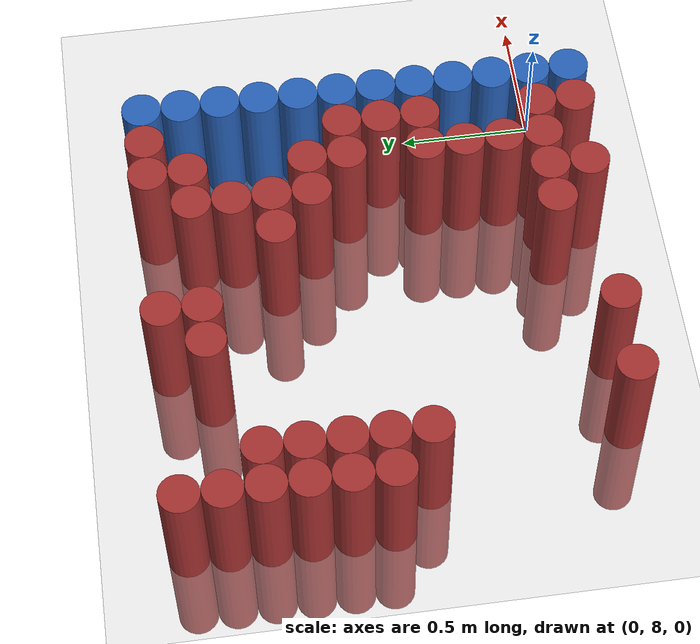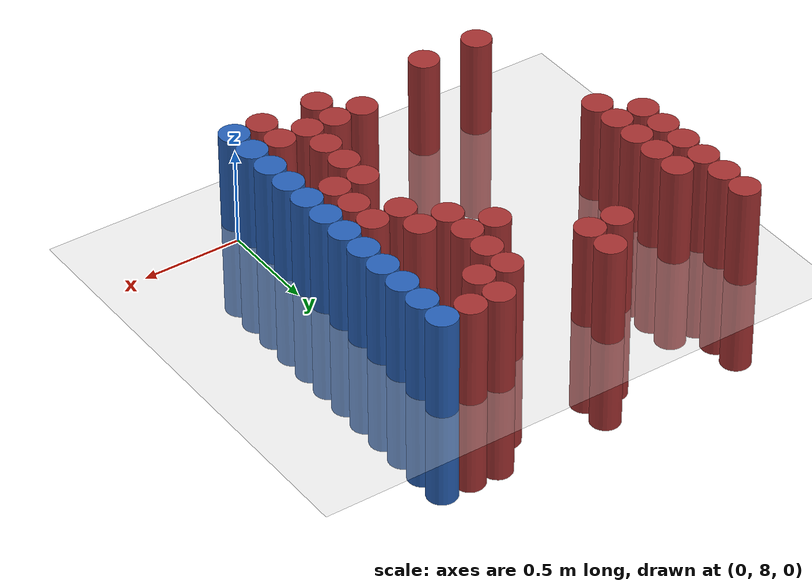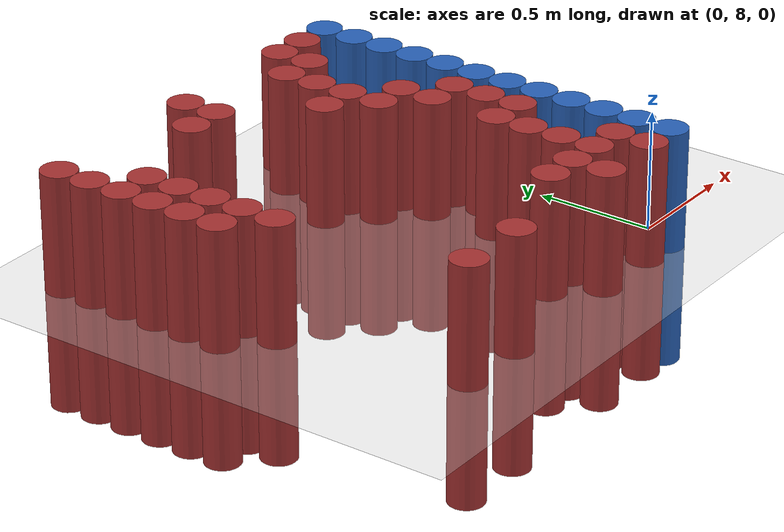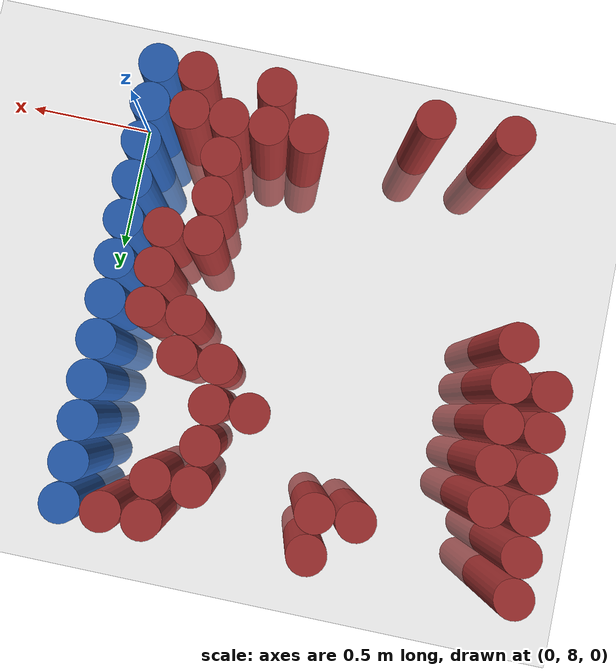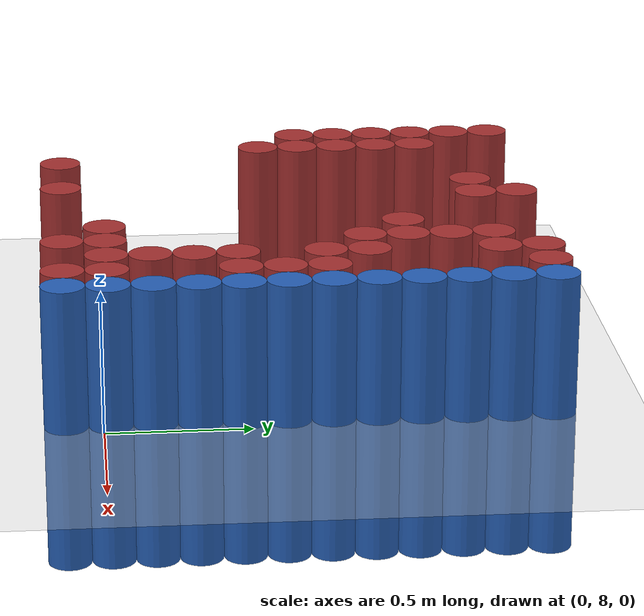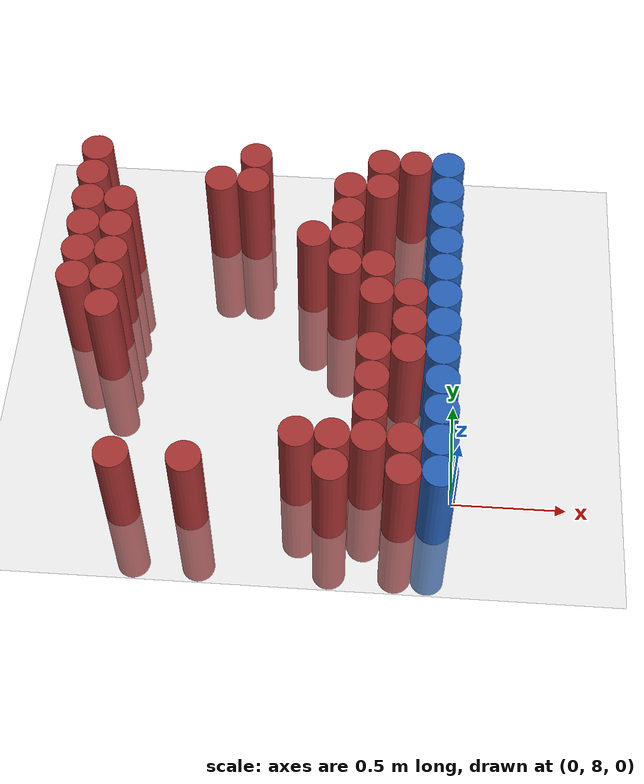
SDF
<sdf version="1.6">
 <world name="default">
  <model name="ground_plane">
   <static>1</static>
   <link name="link">
    <collision name="collision">
     <geometry><plane><normal>0 0 1</normal><size>100 100</size></plane></geometry>
     <surface><friction><ode><mu>100</mu><mu2>50</mu2></ode></friction></surface>
    </collision>
    <visual name="visual">
     <cast_shadows>0</cast_shadows>
     <geometry><plane><normal>0 0 1</normal><size>100 100</size></plane></geometry>
     <material>
      <script><uri>file://media/materials/scripts/gazebo.material</uri><name>Gazebo/Grey</name></script>
     </material>
    </visual>
   </link>
  </model>
  <model name="unit_cylinder_233">
   <static>1</static>
   <pose>-1.725000 8.775000 0.000000 0.000000 0.000000 0.000000</pose>
   <link name="link">
    <inertial>
     <mass>1</mass>
     <inertia><ixx>0.145833</ixx><ixy>0</ixy><ixz>0</ixz><iyy>0.145833</iyy><iyz>0</iyz><izz>0.125</izz></inertia>
    </inertial>
    <collision name="collision">
     <geometry><cylinder><radius>0.075000</radius><length>1</length></cylinder></geometry>
    </collision>
    <visual name="visual">
     <geometry><cylinder><radius>0.075000</radius><length>1</length></cylinder></geometry>
     <material>
      <ambient>0.648000 0.192000 0.192000 1</ambient>
      <diffuse>0.648000 0.192000 0.192000 1</diffuse>
     </material>
     <material>
      <script><name>Gazebo/Grey</name><uri>file://media/materials/scripts/gazebo.material</uri></script>
     </material>
    </visual>
   </link>
  </model>
  <model name="unit_cylinder_234">
   <static>1</static>
   <pose>-1.725000 8.925000 0.000000 0.000000 0.000000 0.000000</pose>
   <link name="link">
    <inertial>
     <mass>1</mass>
     <inertia><ixx>0.145833</ixx><ixy>0</ixy><ixz>0</ixz><iyy>0.145833</iyy><iyz>0</iyz><izz>0.125</izz></inertia>
    </inertial>
    <collision name="collision">
     <geometry><cylinder><radius>0.075000</radius><length>1</length></cylinder></geometry>
    </collision>
    <visual name="visual">
     <geometry><cylinder><radius>0.075000</radius><length>1</length></cylinder></geometry>
     <material>
      <ambient>0.648000 0.192000 0.192000 1</ambient>
      <diffuse>0.648000 0.192000 0.192000 1</diffuse>
     </material>
     <material>
      <script><name>Gazebo/Grey</name><uri>file://media/materials/scripts/gazebo.material</uri></script>
     </material>
    </visual>
   </link>
  </model>
  <model name="unit_cylinder_235">
   <static>1</static>
   <pose>-1.725000 9.075000 0.000000 0.000000 0.000000 0.000000</pose>
   <link name="link">
    <inertial>
     <mass>1</mass>
     <inertia><ixx>0.145833</ixx><ixy>0</ixy><ixz>0</ixz><iyy>0.145833</iyy><iyz>0</iyz><izz>0.125</izz></inertia>
    </inertial>
    <collision name="collision">
     <geometry><cylinder><radius>0.075000</radius><length>1</length></cylinder></geometry>
    </collision>
    <visual name="visual">
     <geometry><cylinder><radius>0.075000</radius><length>1</length></cylinder></geometry>
     <material>
      <ambient>0.648000 0.192000 0.192000 1</ambient>
      <diffuse>0.648000 0.192000 0.192000 1</diffuse>
     </material>
     <material>
      <script><name>Gazebo/Grey</name><uri>file://media/materials/scripts/gazebo.material</uri></script>
     </material>
    </visual>
   </link>
  </model>
  <model name="unit_cylinder_236">
   <static>1</static>
   <pose>-1.725000 9.225000 0.000000 0.000000 0.000000 0.000000</pose>
   <link name="link">
    <inertial>
     <mass>1</mass>
     <inertia><ixx>0.145833</ixx><ixy>0</ixy><ixz>0</ixz><iyy>0.145833</iyy><iyz>0</iyz><izz>0.125</izz></inertia>
    </inertial>
    <collision name="collision">
     <geometry><cylinder><radius>0.075000</radius><length>1</length></cylinder></geometry>
    </collision>
    <visual name="visual">
     <geometry><cylinder><radius>0.075000</radius><length>1</length></cylinder></geometry>
     <material>
      <ambient>0.648000 0.192000 0.192000 1</ambient>
      <diffuse>0.648000 0.192000 0.192000 1</diffuse>
     </material>
     <material>
      <script><name>Gazebo/Grey</name><uri>file://media/materials/scripts/gazebo.material</uri></script>
     </material>
    </visual>
   </link>
  </model>
  <model name="unit_cylinder_237">
   <static>1</static>
   <pose>-1.725000 9.375000 0.000000 0.000000 0.000000 0.000000</pose>
   <link name="link">
    <inertial>
     <mass>1</mass>
     <inertia><ixx>0.145833</ixx><ixy>0</ixy><ixz>0</ixz><iyy>0.145833</iyy><iyz>0</iyz><izz>0.125</izz></inertia>
    </inertial>
    <collision name="collision">
     <geometry><cylinder><radius>0.075000</radius><length>1</length></cylinder></geometry>
    </collision>
    <visual name="visual">
     <geometry><cylinder><radius>0.075000</radius><length>1</length></cylinder></geometry>
     <material>
      <ambient>0.648000 0.192000 0.192000 1</ambient>
      <diffuse>0.648000 0.192000 0.192000 1</diffuse>
     </material>
     <material>
      <script><name>Gazebo/Grey</name><uri>file://media/materials/scripts/gazebo.material</uri></script>
     </material>
    </visual>
   </link>
  </model>
  <model name="unit_cylinder_238">
   <static>1</static>
   <pose>-1.725000 9.525000 0.000000 0.000000 0.000000 0.000000</pose>
   <link name="link">
    <inertial>
     <mass>1</mass>
     <inertia><ixx>0.145833</ixx><ixy>0</ixy><ixz>0</ixz><iyy>0.145833</iyy><iyz>0</iyz><izz>0.125</izz></inertia>
    </inertial>
    <collision name="collision">
     <geometry><cylinder><radius>0.075000</radius><length>1</length></cylinder></geometry>
    </collision>
    <visual name="visual">
     <geometry><cylinder><radius>0.075000</radius><length>1</length></cylinder></geometry>
     <material>
      <ambient>0.648000 0.192000 0.192000 1</ambient>
      <diffuse>0.648000 0.192000 0.192000 1</diffuse>
     </material>
     <material>
      <script><name>Gazebo/Grey</name><uri>file://media/materials/scripts/gazebo.material</uri></script>
     </material>
    </visual>
   </link>
  </model>
  <model name="unit_cylinder_242">
   <static>1</static>
   <pose>-1.575000 8.625000 0.000000 0.000000 0.000000 0.000000</pose>
   <link name="link">
    <inertial>
     <mass>1</mass>
     <inertia><ixx>0.145833</ixx><ixy>0</ixy><ixz>0</ixz><iyy>0.145833</iyy><iyz>0</iyz><izz>0.125</izz></inertia>
    </inertial>
    <collision name="collision">
     <geometry><cylinder><radius>0.075000</radius><length>1</length></cylinder></geometry>
    </collision>
    <visual name="visual">
     <geometry><cylinder><radius>0.075000</radius><length>1</length></cylinder></geometry>
     <material>
      <ambient>0.648000 0.192000 0.192000 1</ambient>
      <diffuse>0.648000 0.192000 0.192000 1</diffuse>
     </material>
     <material>
      <script><name>Gazebo/Grey</name><uri>file://media/materials/scripts/gazebo.material</uri></script>
     </material>
    </visual>
   </link>
  </model>
  <model name="unit_cylinder_243">
   <static>1</static>
   <pose>-1.575000 8.775000 0.000000 0.000000 0.000000 0.000000</pose>
   <link name="link">
    <inertial>
     <mass>1</mass>
     <inertia><ixx>0.145833</ixx><ixy>0</ixy><ixz>0</ixz><iyy>0.145833</iyy><iyz>0</iyz><izz>0.125</izz></inertia>
    </inertial>
    <collision name="collision">
     <geometry><cylinder><radius>0.075000</radius><length>1</length></cylinder></geometry>
    </collision>
    <visual name="visual">
     <geometry><cylinder><radius>0.075000</radius><length>1</length></cylinder></geometry>
     <material>
      <ambient>0.648000 0.192000 0.192000 1</ambient>
      <diffuse>0.648000 0.192000 0.192000 1</diffuse>
     </material>
     <material>
      <script><name>Gazebo/Grey</name><uri>file://media/materials/scripts/gazebo.material</uri></script>
     </material>
    </visual>
   </link>
  </model>
  <model name="unit_cylinder_244">
   <static>1</static>
   <pose>-1.575000 8.925000 0.000000 0.000000 0.000000 0.000000</pose>
   <link name="link">
    <inertial>
     <mass>1</mass>
     <inertia><ixx>0.145833</ixx><ixy>0</ixy><ixz>0</ixz><iyy>0.145833</iyy><iyz>0</iyz><izz>0.125</izz></inertia>
    </inertial>
    <collision name="collision">
     <geometry><cylinder><radius>0.075000</radius><length>1</length></cylinder></geometry>
    </collision>
    <visual name="visual">
     <geometry><cylinder><radius>0.075000</radius><length>1</length></cylinder></geometry>
     <material>
      <ambient>0.648000 0.192000 0.192000 1</ambient>
      <diffuse>0.648000 0.192000 0.192000 1</diffuse>
     </material>
     <material>
      <script><name>Gazebo/Grey</name><uri>file://media/materials/scripts/gazebo.material</uri></script>
     </material>
    </visual>
   </link>
  </model>
  <model name="unit_cylinder_245">
   <static>1</static>
   <pose>-1.575000 9.075000 0.000000 0.000000 0.000000 0.000000</pose>
   <link name="link">
    <inertial>
     <mass>1</mass>
     <inertia><ixx>0.145833</ixx><ixy>0</ixy><ixz>0</ixz><iyy>0.145833</iyy><iyz>0</iyz><izz>0.125</izz></inertia>
    </inertial>
    <collision name="collision">
     <geometry><cylinder><radius>0.075000</radius><length>1</length></cylinder></geometry>
    </collision>
    <visual name="visual">
     <geometry><cylinder><radius>0.075000</radius><length>1</length></cylinder></geometry>
     <material>
      <ambient>0.648000 0.192000 0.192000 1</ambient>
      <diffuse>0.648000 0.192000 0.192000 1</diffuse>
     </material>
     <material>
      <script><name>Gazebo/Grey</name><uri>file://media/materials/scripts/gazebo.material</uri></script>
     </material>
    </visual>
   </link>
  </model>
  <model name="unit_cylinder_246">
   <static>1</static>
   <pose>-1.575000 9.225000 0.000000 0.000000 0.000000 0.000000</pose>
   <link name="link">
    <inertial>
     <mass>1</mass>
     <inertia><ixx>0.145833</ixx><ixy>0</ixy><ixz>0</ixz><iyy>0.145833</iyy><iyz>0</iyz><izz>0.125</izz></inertia>
    </inertial>
    <collision name="collision">
     <geometry><cylinder><radius>0.075000</radius><length>1</length></cylinder></geometry>
    </collision>
    <visual name="visual">
     <geometry><cylinder><radius>0.075000</radius><length>1</length></cylinder></geometry>
     <material>
      <ambient>0.648000 0.192000 0.192000 1</ambient>
      <diffuse>0.648000 0.192000 0.192000 1</diffuse>
     </material>
     <material>
      <script><name>Gazebo/Grey</name><uri>file://media/materials/scripts/gazebo.material</uri></script>
     </material>
    </visual>
   </link>
  </model>
  <model name="unit_cylinder_249">
   <static>1</static>
   <pose>-1.425000 7.875000 0.000000 0.000000 0.000000 0.000000</pose>
   <link name="link">
    <inertial>
     <mass>1</mass>
     <inertia><ixx>0.145833</ixx><ixy>0</ixy><ixz>0</ixz><iyy>0.145833</iyy><iyz>0</iyz><izz>0.125</izz></inertia>
    </inertial>
    <collision name="collision">
     <geometry><cylinder><radius>0.075000</radius><length>1</length></cylinder></geometry>
    </collision>
    <visual name="visual">
     <geometry><cylinder><radius>0.075000</radius><length>1</length></cylinder></geometry>
     <material>
      <ambient>0.648000 0.192000 0.192000 1</ambient>
      <diffuse>0.648000 0.192000 0.192000 1</diffuse>
     </material>
     <material>
      <script><name>Gazebo/Grey</name><uri>file://media/materials/scripts/gazebo.material</uri></script>
     </material>
    </visual>
   </link>
  </model>
  <model name="unit_cylinder_254">
   <static>1</static>
   <pose>-1.125000 7.875000 0.000000 0.000000 0.000000 0.000000</pose>
   <link name="link">
    <inertial>
     <mass>1</mass>
     <inertia><ixx>0.145833</ixx><ixy>0</ixy><ixz>0</ixz><iyy>0.145833</iyy><iyz>0</iyz><izz>0.125</izz></inertia>
    </inertial>
    <collision name="collision">
     <geometry><cylinder><radius>0.075000</radius><length>1</length></cylinder></geometry>
    </collision>
    <visual name="visual">
     <geometry><cylinder><radius>0.075000</radius><length>1</length></cylinder></geometry>
     <material>
      <ambient>0.648000 0.192000 0.192000 1</ambient>
      <diffuse>0.648000 0.192000 0.192000 1</diffuse>
     </material>
     <material>
      <script><name>Gazebo/Grey</name><uri>file://media/materials/scripts/gazebo.material</uri></script>
     </material>
    </visual>
   </link>
  </model>
  <model name="unit_cylinder_255">
   <static>1</static>
   <pose>-1.125000 9.375000 0.000000 0.000000 0.000000 0.000000</pose>
   <link name="link">
    <inertial>
     <mass>1</mass>
     <inertia><ixx>0.145833</ixx><ixy>0</ixy><ixz>0</ixz><iyy>0.145833</iyy><iyz>0</iyz><izz>0.125</izz></inertia>
    </inertial>
    <collision name="collision">
     <geometry><cylinder><radius>0.075000</radius><length>1</length></cylinder></geometry>
    </collision>
    <visual name="visual">
     <geometry><cylinder><radius>0.075000</radius><length>1</length></cylinder></geometry>
     <material>
      <ambient>0.648000 0.192000 0.192000 1</ambient>
      <diffuse>0.648000 0.192000 0.192000 1</diffuse>
     </material>
     <material>
      <script><name>Gazebo/Grey</name><uri>file://media/materials/scripts/gazebo.material</uri></script>
     </material>
    </visual>
   </link>
  </model>
  <model name="unit_cylinder_262">
   <static>1</static>
   <pose>-0.975000 9.375000 0.000000 0.000000 0.000000 0.000000</pose>
   <link name="link">
    <inertial>
     <mass>1</mass>
     <inertia><ixx>0.145833</ixx><ixy>0</ixy><ixz>0</ixz><iyy>0.145833</iyy><iyz>0</iyz><izz>0.125</izz></inertia>
    </inertial>
    <collision name="collision">
     <geometry><cylinder><radius>0.075000</radius><length>1</length></cylinder></geometry>
    </collision>
    <visual name="visual">
     <geometry><cylinder><radius>0.075000</radius><length>1</length></cylinder></geometry>
     <material>
      <ambient>0.648000 0.192000 0.192000 1</ambient>
      <diffuse>0.648000 0.192000 0.192000 1</diffuse>
     </material>
     <material>
      <script><name>Gazebo/Grey</name><uri>file://media/materials/scripts/gazebo.material</uri></script>
     </material>
    </visual>
   </link>
  </model>
  <model name="unit_cylinder_263">
   <static>1</static>
   <pose>-0.975000 9.525000 0.000000 0.000000 0.000000 0.000000</pose>
   <link name="link">
    <inertial>
     <mass>1</mass>
     <inertia><ixx>0.145833</ixx><ixy>0</ixy><ixz>0</ixz><iyy>0.145833</iyy><iyz>0</iyz><izz>0.125</izz></inertia>
    </inertial>
    <collision name="collision">
     <geometry><cylinder><radius>0.075000</radius><length>1</length></cylinder></geometry>
    </collision>
    <visual name="visual">
     <geometry><cylinder><radius>0.075000</radius><length>1</length></cylinder></geometry>
     <material>
      <ambient>0.648000 0.192000 0.192000 1</ambient>
      <diffuse>0.648000 0.192000 0.192000 1</diffuse>
     </material>
     <material>
      <script><name>Gazebo/Grey</name><uri>file://media/materials/scripts/gazebo.material</uri></script>
     </material>
    </visual>
   </link>
  </model>
  <model name="unit_cylinder_275">
   <static>1</static>
   <pose>-0.675000 8.025000 0.000000 0.000000 0.000000 0.000000</pose>
   <link name="link">
    <inertial>
     <mass>1</mass>
     <inertia><ixx>0.145833</ixx><ixy>0</ixy><ixz>0</ixz><iyy>0.145833</iyy><iyz>0</iyz><izz>0.125</izz></inertia>
    </inertial>
    <collision name="collision">
     <geometry><cylinder><radius>0.075000</radius><length>1</length></cylinder></geometry>
    </collision>
    <visual name="visual">
     <geometry><cylinder><radius>0.075000</radius><length>1</length></cylinder></geometry>
     <material>
      <ambient>0.648000 0.192000 0.192000 1</ambient>
      <diffuse>0.648000 0.192000 0.192000 1</diffuse>
     </material>
     <material>
      <script><name>Gazebo/Grey</name><uri>file://media/materials/scripts/gazebo.material</uri></script>
     </material>
    </visual>
   </link>
  </model>
  <model name="unit_cylinder_276">
   <static>1</static>
   <pose>-0.675000 9.075000 0.000000 0.000000 0.000000 0.000000</pose>
   <link name="link">
    <inertial>
     <mass>1</mass>
     <inertia><ixx>0.145833</ixx><ixy>0</ixy><ixz>0</ixz><iyy>0.145833</iyy><iyz>0</iyz><izz>0.125</izz></inertia>
    </inertial>
    <collision name="collision">
     <geometry><cylinder><radius>0.075000</radius><length>1</length></cylinder></geometry>
    </collision>
    <visual name="visual">
     <geometry><cylinder><radius>0.075000</radius><length>1</length></cylinder></geometry>
     <material>
      <ambient>0.648000 0.192000 0.192000 1</ambient>
      <diffuse>0.648000 0.192000 0.192000 1</diffuse>
     </material>
     <material>
      <script><name>Gazebo/Grey</name><uri>file://media/materials/scripts/gazebo.material</uri></script>
     </material>
    </visual>
   </link>
  </model>
  <model name="unit_cylinder_282">
   <static>1</static>
   <pose>-0.525000 7.875000 0.000000 0.000000 0.000000 0.000000</pose>
   <link name="link">
    <inertial>
     <mass>1</mass>
     <inertia><ixx>0.145833</ixx><ixy>0</ixy><ixz>0</ixz><iyy>0.145833</iyy><iyz>0</iyz><izz>0.125</izz></inertia>
    </inertial>
    <collision name="collision">
     <geometry><cylinder><radius>0.075000</radius><length>1</length></cylinder></geometry>
    </collision>
    <visual name="visual">
     <geometry><cylinder><radius>0.075000</radius><length>1</length></cylinder></geometry>
     <material>
      <ambient>0.648000 0.192000 0.192000 1</ambient>
      <diffuse>0.648000 0.192000 0.192000 1</diffuse>
     </material>
     <material>
      <script><name>Gazebo/Grey</name><uri>file://media/materials/scripts/gazebo.material</uri></script>
     </material>
    </visual>
   </link>
  </model>
  <model name="unit_cylinder_283">
   <static>1</static>
   <pose>-0.525000 8.025000 0.000000 0.000000 0.000000 0.000000</pose>
   <link name="link">
    <inertial>
     <mass>1</mass>
     <inertia><ixx>0.145833</ixx><ixy>0</ixy><ixz>0</ixz><iyy>0.145833</iyy><iyz>0</iyz><izz>0.125</izz></inertia>
    </inertial>
    <collision name="collision">
     <geometry><cylinder><radius>0.075000</radius><length>1</length></cylinder></geometry>
    </collision>
    <visual name="visual">
     <geometry><cylinder><radius>0.075000</radius><length>1</length></cylinder></geometry>
     <material>
      <ambient>0.648000 0.192000 0.192000 1</ambient>
      <diffuse>0.648000 0.192000 0.192000 1</diffuse>
     </material>
     <material>
      <script><name>Gazebo/Grey</name><uri>file://media/materials/scripts/gazebo.material</uri></script>
     </material>
    </visual>
   </link>
  </model>
  <model name="unit_cylinder_284">
   <static>1</static>
   <pose>-0.525000 8.925000 0.000000 0.000000 0.000000 0.000000</pose>
   <link name="link">
    <inertial>
     <mass>1</mass>
     <inertia><ixx>0.145833</ixx><ixy>0</ixy><ixz>0</ixz><iyy>0.145833</iyy><iyz>0</iyz><izz>0.125</izz></inertia>
    </inertial>
    <collision name="collision">
     <geometry><cylinder><radius>0.075000</radius><length>1</length></cylinder></geometry>
    </collision>
    <visual name="visual">
     <geometry><cylinder><radius>0.075000</radius><length>1</length></cylinder></geometry>
     <material>
      <ambient>0.648000 0.192000 0.192000 1</ambient>
      <diffuse>0.648000 0.192000 0.192000 1</diffuse>
     </material>
     <material>
      <script><name>Gazebo/Grey</name><uri>file://media/materials/scripts/gazebo.material</uri></script>
     </material>
    </visual>
   </link>
  </model>
  <model name="unit_cylinder_285">
   <static>1</static>
   <pose>-0.525000 9.075000 0.000000 0.000000 0.000000 0.000000</pose>
   <link name="link">
    <inertial>
     <mass>1</mass>
     <inertia><ixx>0.145833</ixx><ixy>0</ixy><ixz>0</ixz><iyy>0.145833</iyy><iyz>0</iyz><izz>0.125</izz></inertia>
    </inertial>
    <collision name="collision">
     <geometry><cylinder><radius>0.075000</radius><length>1</length></cylinder></geometry>
    </collision>
    <visual name="visual">
     <geometry><cylinder><radius>0.075000</radius><length>1</length></cylinder></geometry>
     <material>
      <ambient>0.648000 0.192000 0.192000 1</ambient>
      <diffuse>0.648000 0.192000 0.192000 1</diffuse>
     </material>
     <material>
      <script><name>Gazebo/Grey</name><uri>file://media/materials/scripts/gazebo.material</uri></script>
     </material>
    </visual>
   </link>
  </model>
  <model name="unit_cylinder_286">
   <static>1</static>
   <pose>-0.525000 9.225000 0.000000 0.000000 0.000000 0.000000</pose>
   <link name="link">
    <inertial>
     <mass>1</mass>
     <inertia><ixx>0.145833</ixx><ixy>0</ixy><ixz>0</ixz><iyy>0.145833</iyy><iyz>0</iyz><izz>0.125</izz></inertia>
    </inertial>
    <collision name="collision">
     <geometry><cylinder><radius>0.075000</radius><length>1</length></cylinder></geometry>
    </collision>
    <visual name="visual">
     <geometry><cylinder><radius>0.075000</radius><length>1</length></cylinder></geometry>
     <material>
      <ambient>0.648000 0.192000 0.192000 1</ambient>
      <diffuse>0.648000 0.192000 0.192000 1</diffuse>
     </material>
     <material>
      <script><name>Gazebo/Grey</name><uri>file://media/materials/scripts/gazebo.material</uri></script>
     </material>
    </visual>
   </link>
  </model>
  <model name="unit_cylinder_287">
   <static>1</static>
   <pose>-0.525000 9.375000 0.000000 0.000000 0.000000 0.000000</pose>
   <link name="link">
    <inertial>
     <mass>1</mass>
     <inertia><ixx>0.145833</ixx><ixy>0</ixy><ixz>0</ixz><iyy>0.145833</iyy><iyz>0</iyz><izz>0.125</izz></inertia>
    </inertial>
    <collision name="collision">
     <geometry><cylinder><radius>0.075000</radius><length>1</length></cylinder></geometry>
    </collision>
    <visual name="visual">
     <geometry><cylinder><radius>0.075000</radius><length>1</length></cylinder></geometry>
     <material>
      <ambient>0.648000 0.192000 0.192000 1</ambient>
      <diffuse>0.648000 0.192000 0.192000 1</diffuse>
     </material>
     <material>
      <script><name>Gazebo/Grey</name><uri>file://media/materials/scripts/gazebo.material</uri></script>
     </material>
    </visual>
   </link>
  </model>
  <model name="unit_cylinder_294">
   <static>1</static>
   <pose>-0.375000 8.025000 0.000000 0.000000 0.000000 0.000000</pose>
   <link name="link">
    <inertial>
     <mass>1</mass>
     <inertia><ixx>0.145833</ixx><ixy>0</ixy><ixz>0</ixz><iyy>0.145833</iyy><iyz>0</iyz><izz>0.125</izz></inertia>
    </inertial>
    <collision name="collision">
     <geometry><cylinder><radius>0.075000</radius><length>1</length></cylinder></geometry>
    </collision>
    <visual name="visual">
     <geometry><cylinder><radius>0.075000</radius><length>1</length></cylinder></geometry>
     <material>
      <ambient>0.648000 0.192000 0.192000 1</ambient>
      <diffuse>0.648000 0.192000 0.192000 1</diffuse>
     </material>
     <material>
      <script><name>Gazebo/Grey</name><uri>file://media/materials/scripts/gazebo.material</uri></script>
     </material>
    </visual>
   </link>
  </model>
  <model name="unit_cylinder_295">
   <static>1</static>
   <pose>-0.375000 8.175000 0.000000 0.000000 0.000000 0.000000</pose>
   <link name="link">
    <inertial>
     <mass>1</mass>
     <inertia><ixx>0.145833</ixx><ixy>0</ixy><ixz>0</ixz><iyy>0.145833</iyy><iyz>0</iyz><izz>0.125</izz></inertia>
    </inertial>
    <collision name="collision">
     <geometry><cylinder><radius>0.075000</radius><length>1</length></cylinder></geometry>
    </collision>
    <visual name="visual">
     <geometry><cylinder><radius>0.075000</radius><length>1</length></cylinder></geometry>
     <material>
      <ambient>0.648000 0.192000 0.192000 1</ambient>
      <diffuse>0.648000 0.192000 0.192000 1</diffuse>
     </material>
     <material>
      <script><name>Gazebo/Grey</name><uri>file://media/materials/scripts/gazebo.material</uri></script>
     </material>
    </visual>
   </link>
  </model>
  <model name="unit_cylinder_296">
   <static>1</static>
   <pose>-0.375000 8.325000 0.000000 0.000000 0.000000 0.000000</pose>
   <link name="link">
    <inertial>
     <mass>1</mass>
     <inertia><ixx>0.145833</ixx><ixy>0</ixy><ixz>0</ixz><iyy>0.145833</iyy><iyz>0</iyz><izz>0.125</izz></inertia>
    </inertial>
    <collision name="collision">
     <geometry><cylinder><radius>0.075000</radius><length>1</length></cylinder></geometry>
    </collision>
    <visual name="visual">
     <geometry><cylinder><radius>0.075000</radius><length>1</length></cylinder></geometry>
     <material>
      <ambient>0.648000 0.192000 0.192000 1</ambient>
      <diffuse>0.648000 0.192000 0.192000 1</diffuse>
     </material>
     <material>
      <script><name>Gazebo/Grey</name><uri>file://media/materials/scripts/gazebo.material</uri></script>
     </material>
    </visual>
   </link>
  </model>
  <model name="unit_cylinder_297">
   <static>1</static>
   <pose>-0.375000 8.475000 0.000000 0.000000 0.000000 0.000000</pose>
   <link name="link">
    <inertial>
     <mass>1</mass>
     <inertia><ixx>0.145833</ixx><ixy>0</ixy><ixz>0</ixz><iyy>0.145833</iyy><iyz>0</iyz><izz>0.125</izz></inertia>
    </inertial>
    <collision name="collision">
     <geometry><cylinder><radius>0.075000</radius><length>1</length></cylinder></geometry>
    </collision>
    <visual name="visual">
     <geometry><cylinder><radius>0.075000</radius><length>1</length></cylinder></geometry>
     <material>
      <ambient>0.648000 0.192000 0.192000 1</ambient>
      <diffuse>0.648000 0.192000 0.192000 1</diffuse>
     </material>
     <material>
      <script><name>Gazebo/Grey</name><uri>file://media/materials/scripts/gazebo.material</uri></script>
     </material>
    </visual>
   </link>
  </model>
  <model name="unit_cylinder_298">
   <static>1</static>
   <pose>-0.375000 8.775000 0.000000 0.000000 0.000000 0.000000</pose>
   <link name="link">
    <inertial>
     <mass>1</mass>
     <inertia><ixx>0.145833</ixx><ixy>0</ixy><ixz>0</ixz><iyy>0.145833</iyy><iyz>0</iyz><izz>0.125</izz></inertia>
    </inertial>
    <collision name="collision">
     <geometry><cylinder><radius>0.075000</radius><length>1</length></cylinder></geometry>
    </collision>
    <visual name="visual">
     <geometry><cylinder><radius>0.075000</radius><length>1</length></cylinder></geometry>
     <material>
      <ambient>0.648000 0.192000 0.192000 1</ambient>
      <diffuse>0.648000 0.192000 0.192000 1</diffuse>
     </material>
     <material>
      <script><name>Gazebo/Grey</name><uri>file://media/materials/scripts/gazebo.material</uri></script>
     </material>
    </visual>
   </link>
  </model>
  <model name="unit_cylinder_299">
   <static>1</static>
   <pose>-0.375000 8.925000 0.000000 0.000000 0.000000 0.000000</pose>
   <link name="link">
    <inertial>
     <mass>1</mass>
     <inertia><ixx>0.145833</ixx><ixy>0</ixy><ixz>0</ixz><iyy>0.145833</iyy><iyz>0</iyz><izz>0.125</izz></inertia>
    </inertial>
    <collision name="collision">
     <geometry><cylinder><radius>0.075000</radius><length>1</length></cylinder></geometry>
    </collision>
    <visual name="visual">
     <geometry><cylinder><radius>0.075000</radius><length>1</length></cylinder></geometry>
     <material>
      <ambient>0.648000 0.192000 0.192000 1</ambient>
      <diffuse>0.648000 0.192000 0.192000 1</diffuse>
     </material>
     <material>
      <script><name>Gazebo/Grey</name><uri>file://media/materials/scripts/gazebo.material</uri></script>
     </material>
    </visual>
   </link>
  </model>
  <model name="unit_cylinder_300">
   <static>1</static>
   <pose>-0.375000 9.375000 0.000000 0.000000 0.000000 0.000000</pose>
   <link name="link">
    <inertial>
     <mass>1</mass>
     <inertia><ixx>0.145833</ixx><ixy>0</ixy><ixz>0</ixz><iyy>0.145833</iyy><iyz>0</iyz><izz>0.125</izz></inertia>
    </inertial>
    <collision name="collision">
     <geometry><cylinder><radius>0.075000</radius><length>1</length></cylinder></geometry>
    </collision>
    <visual name="visual">
     <geometry><cylinder><radius>0.075000</radius><length>1</length></cylinder></geometry>
     <material>
      <ambient>0.648000 0.192000 0.192000 1</ambient>
      <diffuse>0.648000 0.192000 0.192000 1</diffuse>
     </material>
     <material>
      <script><name>Gazebo/Grey</name><uri>file://media/materials/scripts/gazebo.material</uri></script>
     </material>
    </visual>
   </link>
  </model>
  <model name="unit_cylinder_301">
   <static>1</static>
   <pose>-0.375000 9.525000 0.000000 0.000000 0.000000 0.000000</pose>
   <link name="link">
    <inertial>
     <mass>1</mass>
     <inertia><ixx>0.145833</ixx><ixy>0</ixy><ixz>0</ixz><iyy>0.145833</iyy><iyz>0</iyz><izz>0.125</izz></inertia>
    </inertial>
    <collision name="collision">
     <geometry><cylinder><radius>0.075000</radius><length>1</length></cylinder></geometry>
    </collision>
    <visual name="visual">
     <geometry><cylinder><radius>0.075000</radius><length>1</length></cylinder></geometry>
     <material>
      <ambient>0.648000 0.192000 0.192000 1</ambient>
      <diffuse>0.648000 0.192000 0.192000 1</diffuse>
     </material>
     <material>
      <script><name>Gazebo/Grey</name><uri>file://media/materials/scripts/gazebo.material</uri></script>
     </material>
    </visual>
   </link>
  </model>
  <model name="unit_cylinder_315">
   <static>1</static>
   <pose>-0.225000 7.875000 0.000000 0.000000 0.000000 0.000000</pose>
   <link name="link">
    <inertial>
     <mass>1</mass>
     <inertia><ixx>0.145833</ixx><ixy>0</ixy><ixz>0</ixz><iyy>0.145833</iyy><iyz>0</iyz><izz>0.125</izz></inertia>
    </inertial>
    <collision name="collision">
     <geometry><cylinder><radius>0.075000</radius><length>1</length></cylinder></geometry>
    </collision>
    <visual name="visual">
     <geometry><cylinder><radius>0.075000</radius><length>1</length></cylinder></geometry>
     <material>
      <ambient>0.648000 0.192000 0.192000 1</ambient>
      <diffuse>0.648000 0.192000 0.192000 1</diffuse>
     </material>
     <material>
      <script><name>Gazebo/Grey</name><uri>file://media/materials/scripts/gazebo.material</uri></script>
     </material>
    </visual>
   </link>
  </model>
  <model name="unit_cylinder_316">
   <static>1</static>
   <pose>-0.225000 8.025000 0.000000 0.000000 0.000000 0.000000</pose>
   <link name="link">
    <inertial>
     <mass>1</mass>
     <inertia><ixx>0.145833</ixx><ixy>0</ixy><ixz>0</ixz><iyy>0.145833</iyy><iyz>0</iyz><izz>0.125</izz></inertia>
    </inertial>
    <collision name="collision">
     <geometry><cylinder><radius>0.075000</radius><length>1</length></cylinder></geometry>
    </collision>
    <visual name="visual">
     <geometry><cylinder><radius>0.075000</radius><length>1</length></cylinder></geometry>
     <material>
      <ambient>0.648000 0.192000 0.192000 1</ambient>
      <diffuse>0.648000 0.192000 0.192000 1</diffuse>
     </material>
     <material>
      <script><name>Gazebo/Grey</name><uri>file://media/materials/scripts/gazebo.material</uri></script>
     </material>
    </visual>
   </link>
  </model>
  <model name="unit_cylinder_317">
   <static>1</static>
   <pose>-0.225000 8.475000 0.000000 0.000000 0.000000 0.000000</pose>
   <link name="link">
    <inertial>
     <mass>1</mass>
     <inertia><ixx>0.145833</ixx><ixy>0</ixy><ixz>0</ixz><iyy>0.145833</iyy><iyz>0</iyz><izz>0.125</izz></inertia>
    </inertial>
    <collision name="collision">
     <geometry><cylinder><radius>0.075000</radius><length>1</length></cylinder></geometry>
    </collision>
    <visual name="visual">
     <geometry><cylinder><radius>0.075000</radius><length>1</length></cylinder></geometry>
     <material>
      <ambient>0.648000 0.192000 0.192000 1</ambient>
      <diffuse>0.648000 0.192000 0.192000 1</diffuse>
     </material>
     <material>
      <script><name>Gazebo/Grey</name><uri>file://media/materials/scripts/gazebo.material</uri></script>
     </material>
    </visual>
   </link>
  </model>
  <model name="unit_cylinder_318">
   <static>1</static>
   <pose>-0.225000 8.625000 0.000000 0.000000 0.000000 0.000000</pose>
   <link name="link">
    <inertial>
     <mass>1</mass>
     <inertia><ixx>0.145833</ixx><ixy>0</ixy><ixz>0</ixz><iyy>0.145833</iyy><iyz>0</iyz><izz>0.125</izz></inertia>
    </inertial>
    <collision name="collision">
     <geometry><cylinder><radius>0.075000</radius><length>1</length></cylinder></geometry>
    </collision>
    <visual name="visual">
     <geometry><cylinder><radius>0.075000</radius><length>1</length></cylinder></geometry>
     <material>
      <ambient>0.648000 0.192000 0.192000 1</ambient>
      <diffuse>0.648000 0.192000 0.192000 1</diffuse>
     </material>
     <material>
      <script><name>Gazebo/Grey</name><uri>file://media/materials/scripts/gazebo.material</uri></script>
     </material>
    </visual>
   </link>
  </model>
  <model name="unit_cylinder_319">
   <static>1</static>
   <pose>-0.225000 8.775000 0.000000 0.000000 0.000000 0.000000</pose>
   <link name="link">
    <inertial>
     <mass>1</mass>
     <inertia><ixx>0.145833</ixx><ixy>0</ixy><ixz>0</ixz><iyy>0.145833</iyy><iyz>0</iyz><izz>0.125</izz></inertia>
    </inertial>
    <collision name="collision">
     <geometry><cylinder><radius>0.075000</radius><length>1</length></cylinder></geometry>
    </collision>
    <visual name="visual">
     <geometry><cylinder><radius>0.075000</radius><length>1</length></cylinder></geometry>
     <material>
      <ambient>0.648000 0.192000 0.192000 1</ambient>
      <diffuse>0.648000 0.192000 0.192000 1</diffuse>
     </material>
     <material>
      <script><name>Gazebo/Grey</name><uri>file://media/materials/scripts/gazebo.material</uri></script>
     </material>
    </visual>
   </link>
  </model>
  <model name="unit_cylinder_320">
   <static>1</static>
   <pose>-0.225000 9.525000 0.000000 0.000000 0.000000 0.000000</pose>
   <link name="link">
    <inertial>
     <mass>1</mass>
     <inertia><ixx>0.145833</ixx><ixy>0</ixy><ixz>0</ixz><iyy>0.145833</iyy><iyz>0</iyz><izz>0.125</izz></inertia>
    </inertial>
    <collision name="collision">
     <geometry><cylinder><radius>0.075000</radius><length>1</length></cylinder></geometry>
    </collision>
    <visual name="visual">
     <geometry><cylinder><radius>0.075000</radius><length>1</length></cylinder></geometry>
     <material>
      <ambient>0.648000 0.192000 0.192000 1</ambient>
      <diffuse>0.648000 0.192000 0.192000 1</diffuse>
     </material>
     <material>
      <script><name>Gazebo/Grey</name><uri>file://media/materials/scripts/gazebo.material</uri></script>
     </material>
    </visual>
   </link>
  </model>
  <model name="unit_cylinder_339">
   <static>1</static>
   <pose>-0.075000 7.875000 0.000000 0.000000 0.000000 0.000000</pose>
   <link name="link">
    <inertial>
     <mass>1</mass>
     <inertia><ixx>0.145833</ixx><ixy>0</ixy><ixz>0</ixz><iyy>0.145833</iyy><iyz>0</iyz><izz>0.125</izz></inertia>
    </inertial>
    <collision name="collision">
     <geometry><cylinder><radius>0.075000</radius><length>1</length></cylinder></geometry>
    </collision>
    <visual name="visual">
     <geometry><cylinder><radius>0.075000</radius><length>1</length></cylinder></geometry>
     <material>
      <ambient>0.152000 0.379000 0.720000 1</ambient>
      <diffuse>0.152000 0.379000 0.720000 1</diffuse>
     </material>
     <material>
      <script><name>Gazebo/Grey</name><uri>file://media/materials/scripts/gazebo.material</uri></script>
     </material>
    </visual>
   </link>
  </model>
  <model name="unit_cylinder_340">
   <static>1</static>
   <pose>-0.075000 8.025000 0.000000 0.000000 0.000000 0.000000</pose>
   <link name="link">
    <inertial>
     <mass>1</mass>
     <inertia><ixx>0.145833</ixx><ixy>0</ixy><ixz>0</ixz><iyy>0.145833</iyy><iyz>0</iyz><izz>0.125</izz></inertia>
    </inertial>
    <collision name="collision">
     <geometry><cylinder><radius>0.075000</radius><length>1</length></cylinder></geometry>
    </collision>
    <visual name="visual">
     <geometry><cylinder><radius>0.075000</radius><length>1</length></cylinder></geometry>
     <material>
      <ambient>0.152000 0.379000 0.720000 1</ambient>
      <diffuse>0.152000 0.379000 0.720000 1</diffuse>
     </material>
     <material>
      <script><name>Gazebo/Grey</name><uri>file://media/materials/scripts/gazebo.material</uri></script>
     </material>
    </visual>
   </link>
  </model>
  <model name="unit_cylinder_341">
   <static>1</static>
   <pose>-0.075000 8.175000 0.000000 0.000000 0.000000 0.000000</pose>
   <link name="link">
    <inertial>
     <mass>1</mass>
     <inertia><ixx>0.145833</ixx><ixy>0</ixy><ixz>0</ixz><iyy>0.145833</iyy><iyz>0</iyz><izz>0.125</izz></inertia>
    </inertial>
    <collision name="collision">
     <geometry><cylinder><radius>0.075000</radius><length>1</length></cylinder></geometry>
    </collision>
    <visual name="visual">
     <geometry><cylinder><radius>0.075000</radius><length>1</length></cylinder></geometry>
     <material>
      <ambient>0.152000 0.379000 0.720000 1</ambient>
      <diffuse>0.152000 0.379000 0.720000 1</diffuse>
     </material>
     <material>
      <script><name>Gazebo/Grey</name><uri>file://media/materials/scripts/gazebo.material</uri></script>
     </material>
    </visual>
   </link>
  </model>
  <model name="unit_cylinder_342">
   <static>1</static>
   <pose>-0.075000 8.325000 0.000000 0.000000 0.000000 0.000000</pose>
   <link name="link">
    <inertial>
     <mass>1</mass>
     <inertia><ixx>0.145833</ixx><ixy>0</ixy><ixz>0</ixz><iyy>0.145833</iyy><iyz>0</iyz><izz>0.125</izz></inertia>
    </inertial>
    <collision name="collision">
     <geometry><cylinder><radius>0.075000</radius><length>1</length></cylinder></geometry>
    </collision>
    <visual name="visual">
     <geometry><cylinder><radius>0.075000</radius><length>1</length></cylinder></geometry>
     <material>
      <ambient>0.152000 0.379000 0.720000 1</ambient>
      <diffuse>0.152000 0.379000 0.720000 1</diffuse>
     </material>
     <material>
      <script><name>Gazebo/Grey</name><uri>file://media/materials/scripts/gazebo.material</uri></script>
     </material>
    </visual>
   </link>
  </model>
  <model name="unit_cylinder_343">
   <static>1</static>
   <pose>-0.075000 8.475000 0.000000 0.000000 0.000000 0.000000</pose>
   <link name="link">
    <inertial>
     <mass>1</mass>
     <inertia><ixx>0.145833</ixx><ixy>0</ixy><ixz>0</ixz><iyy>0.145833</iyy><iyz>0</iyz><izz>0.125</izz></inertia>
    </inertial>
    <collision name="collision">
     <geometry><cylinder><radius>0.075000</radius><length>1</length></cylinder></geometry>
    </collision>
    <visual name="visual">
     <geometry><cylinder><radius>0.075000</radius><length>1</length></cylinder></geometry>
     <material>
      <ambient>0.152000 0.379000 0.720000 1</ambient>
      <diffuse>0.152000 0.379000 0.720000 1</diffuse>
     </material>
     <material>
      <script><name>Gazebo/Grey</name><uri>file://media/materials/scripts/gazebo.material</uri></script>
     </material>
    </visual>
   </link>
  </model>
  <model name="unit_cylinder_344">
   <static>1</static>
   <pose>-0.075000 8.625000 0.000000 0.000000 0.000000 0.000000</pose>
   <link name="link">
    <inertial>
     <mass>1</mass>
     <inertia><ixx>0.145833</ixx><ixy>0</ixy><ixz>0</ixz><iyy>0.145833</iyy><iyz>0</iyz><izz>0.125</izz></inertia>
    </inertial>
    <collision name="collision">
     <geometry><cylinder><radius>0.075000</radius><length>1</length></cylinder></geometry>
    </collision>
    <visual name="visual">
     <geometry><cylinder><radius>0.075000</radius><length>1</length></cylinder></geometry>
     <material>
      <ambient>0.152000 0.379000 0.720000 1</ambient>
      <diffuse>0.152000 0.379000 0.720000 1</diffuse>
     </material>
     <material>
      <script><name>Gazebo/Grey</name><uri>file://media/materials/scripts/gazebo.material</uri></script>
     </material>
    </visual>
   </link>
  </model>
  <model name="unit_cylinder_345">
   <static>1</static>
   <pose>-0.075000 8.775000 0.000000 0.000000 0.000000 0.000000</pose>
   <link name="link">
    <inertial>
     <mass>1</mass>
     <inertia><ixx>0.145833</ixx><ixy>0</ixy><ixz>0</ixz><iyy>0.145833</iyy><iyz>0</iyz><izz>0.125</izz></inertia>
    </inertial>
    <collision name="collision">
     <geometry><cylinder><radius>0.075000</radius><length>1</length></cylinder></geometry>
    </collision>
    <visual name="visual">
     <geometry><cylinder><radius>0.075000</radius><length>1</length></cylinder></geometry>
     <material>
      <ambient>0.152000 0.379000 0.720000 1</ambient>
      <diffuse>0.152000 0.379000 0.720000 1</diffuse>
     </material>
     <material>
      <script><name>Gazebo/Grey</name><uri>file://media/materials/scripts/gazebo.material</uri></script>
     </material>
    </visual>
   </link>
  </model>
  <model name="unit_cylinder_346">
   <static>1</static>
   <pose>-0.075000 8.925000 0.000000 0.000000 0.000000 0.000000</pose>
   <link name="link">
    <inertial>
     <mass>1</mass>
     <inertia><ixx>0.145833</ixx><ixy>0</ixy><ixz>0</ixz><iyy>0.145833</iyy><iyz>0</iyz><izz>0.125</izz></inertia>
    </inertial>
    <collision name="collision">
     <geometry><cylinder><radius>0.075000</radius><length>1</length></cylinder></geometry>
    </collision>
    <visual name="visual">
     <geometry><cylinder><radius>0.075000</radius><length>1</length></cylinder></geometry>
     <material>
      <ambient>0.152000 0.379000 0.720000 1</ambient>
      <diffuse>0.152000 0.379000 0.720000 1</diffuse>
     </material>
     <material>
      <script><name>Gazebo/Grey</name><uri>file://media/materials/scripts/gazebo.material</uri></script>
     </material>
    </visual>
   </link>
  </model>
  <model name="unit_cylinder_347">
   <static>1</static>
   <pose>-0.075000 9.075000 0.000000 0.000000 0.000000 0.000000</pose>
   <link name="link">
    <inertial>
     <mass>1</mass>
     <inertia><ixx>0.145833</ixx><ixy>0</ixy><ixz>0</ixz><iyy>0.145833</iyy><iyz>0</iyz><izz>0.125</izz></inertia>
    </inertial>
    <collision name="collision">
     <geometry><cylinder><radius>0.075000</radius><length>1</length></cylinder></geometry>
    </collision>
    <visual name="visual">
     <geometry><cylinder><radius>0.075000</radius><length>1</length></cylinder></geometry>
     <material>
      <ambient>0.152000 0.379000 0.720000 1</ambient>
      <diffuse>0.152000 0.379000 0.720000 1</diffuse>
     </material>
     <material>
      <script><name>Gazebo/Grey</name><uri>file://media/materials/scripts/gazebo.material</uri></script>
     </material>
    </visual>
   </link>
  </model>
  <model name="unit_cylinder_348">
   <static>1</static>
   <pose>-0.075000 9.225000 0.000000 0.000000 0.000000 0.000000</pose>
   <link name="link">
    <inertial>
     <mass>1</mass>
     <inertia><ixx>0.145833</ixx><ixy>0</ixy><ixz>0</ixz><iyy>0.145833</iyy><iyz>0</iyz><izz>0.125</izz></inertia>
    </inertial>
    <collision name="collision">
     <geometry><cylinder><radius>0.075000</radius><length>1</length></cylinder></geometry>
    </collision>
    <visual name="visual">
     <geometry><cylinder><radius>0.075000</radius><length>1</length></cylinder></geometry>
     <material>
      <ambient>0.152000 0.379000 0.720000 1</ambient>
      <diffuse>0.152000 0.379000 0.720000 1</diffuse>
     </material>
     <material>
      <script><name>Gazebo/Grey</name><uri>file://media/materials/scripts/gazebo.material</uri></script>
     </material>
    </visual>
   </link>
  </model>
  <model name="unit_cylinder_349">
   <static>1</static>
   <pose>-0.075000 9.375000 0.000000 0.000000 0.000000 0.000000</pose>
   <link name="link">
    <inertial>
     <mass>1</mass>
     <inertia><ixx>0.145833</ixx><ixy>0</ixy><ixz>0</ixz><iyy>0.145833</iyy><iyz>0</iyz><izz>0.125</izz></inertia>
    </inertial>
    <collision name="collision">
     <geometry><cylinder><radius>0.075000</radius><length>1</length></cylinder></geometry>
    </collision>
    <visual name="visual">
     <geometry><cylinder><radius>0.075000</radius><length>1</length></cylinder></geometry>
     <material>
      <ambient>0.152000 0.379000 0.720000 1</ambient>
      <diffuse>0.152000 0.379000 0.720000 1</diffuse>
     </material>
     <material>
      <script><name>Gazebo/Grey</name><uri>file://media/materials/scripts/gazebo.material</uri></script>
     </material>
    </visual>
   </link>
  </model>
  <model name="unit_cylinder_350">
   <static>1</static>
   <pose>-0.075000 9.525000 0.000000 0.000000 0.000000 0.000000</pose>
   <link name="link">
    <inertial>
     <mass>1</mass>
     <inertia><ixx>0.145833</ixx><ixy>0</ixy><ixz>0</ixz><iyy>0.145833</iyy><iyz>0</iyz><izz>0.125</izz></inertia>
    </inertial>
    <collision name="collision">
     <geometry><cylinder><radius>0.075000</radius><length>1</length></cylinder></geometry>
    </collision>
    <visual name="visual">
     <geometry><cylinder><radius>0.075000</radius><length>1</length></cylinder></geometry>
     <material>
      <ambient>0.152000 0.379000 0.720000 1</ambient>
      <diffuse>0.152000 0.379000 0.720000 1</diffuse>
     </material>
     <material>
      <script><name>Gazebo/Grey</name><uri>file://media/materials/scripts/gazebo.material</uri></script>
     </material>
    </visual>
   </link>
  </model>
 </world>
</sdf>
